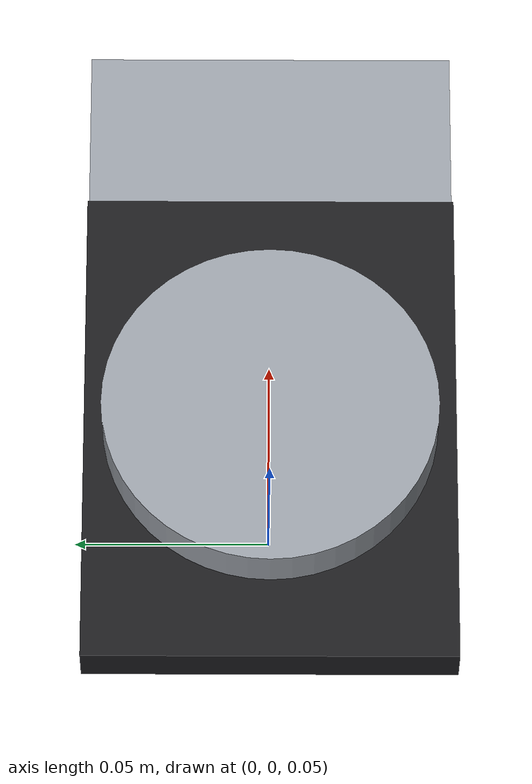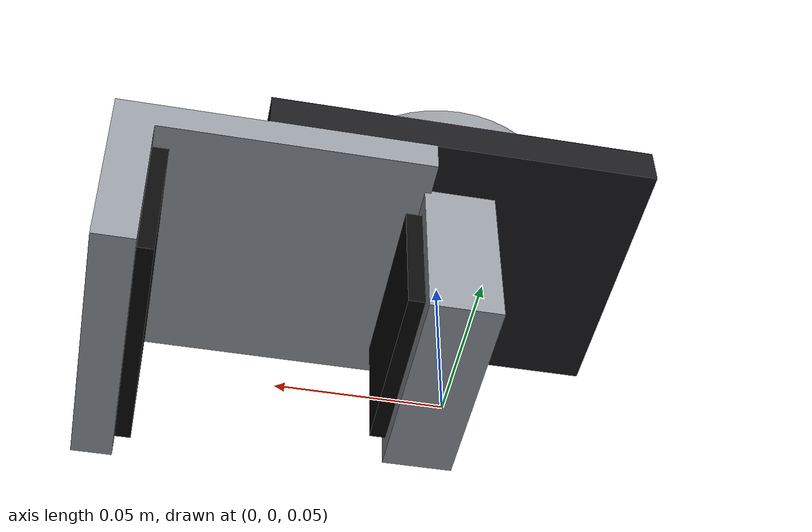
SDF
<?xml version='1.0'?>
<sdf version='1.7'>
  <model name='fixed_jaw_gripper'>

    <!-- ===== Fixed part: flange + body + integral L-jaw + fixed pad ===== -->
    <link name='base_link'>
      <inertial>
        <pose>0.03 0 0.09 0 0 0</pose>
        <mass>0.4</mass>
        <inertia>
          <ixx>0.0005</ixx><iyy>0.0012</iyy><izz>0.0012</izz>
          <ixy>0</ixy><ixz>0</ixz><iyz>0</iyz>
        </inertia>
      </inertial>

      <visual name='base_visual'>
        <geometry><mesh><uri>model://gripper/meshes/base.dae</uri></mesh></geometry>
      </visual>

      <collision name='flange_col'>
        <pose>0 0 0.1336 0 0 0</pose>
        <geometry><cylinder><radius>0.041</radius><length>0.013</length></cylinder></geometry>
      </collision>
      <collision name='body_col'>
        <pose>0 0 0.1210 0 0 0</pose>
        <geometry><box><size>0.1214 0.0912 0.0121</size></box></geometry>
      </collision>
      <collision name='plate_col'>
        <pose>0.0581 0 0.1100 0 0 0</pose>
        <geometry><box><size>0.0980 0.0912 0.010</size></box></geometry>
      </collision>
      <collision name='lip_col'>
        <pose>0.1008 0 0.0800 0 0 0</pose>
        <geometry><box><size>0.0127 0.0912 0.050</size></box></geometry>
      </collision>
      <collision name='pad_fixed_col'>
        <pose>0.0919 0 0.0800 0 0 0</pose>
        <geometry><box><size>0.005 0.080 0.044</size></box></geometry>
        <surface><friction><ode><mu>1.2</mu><mu2>1.2</mu2></ode></friction></surface>
      </collision>
    </link>

    <!-- ===== Moving part: pusher (+ body connector) + moving pad ===== -->
    <link name='finger_link'>
      <inertial>
        <pose>0 0 0.085 0 0 0</pose>
        <mass>0.1</mass>
        <inertia>
          <ixx>0.00008</ixx><iyy>0.000046</iyy><izz>0.000045</izz>
          <ixy>0</ixy><ixz>0</ixz><iyz>0</iyz>
        </inertia>
      </inertial>

      <visual name='finger_visual'>
        <geometry><mesh><uri>model://gripper/meshes/finger.dae</uri></mesh></geometry>
      </visual>

      <collision name='finger_col'>
        <pose>0.0001 0 0.0916 0 0 0</pose>
        <geometry><box><size>0.022 0.070 0.071</size></box></geometry>
        <surface><friction><ode><mu>1.2</mu><mu2>1.2</mu2></ode></friction></surface>
      </collision>
      <collision name='pad_moving_col'>
        <pose>0.0136 0 0.0810 0 0 0</pose>
        <geometry><box><size>0.005 0.060 0.038</size></box></geometry>
        <surface><friction><ode><mu>1.2</mu><mu2>1.2</mu2></ode></friction></surface>
      </collision>
    </link>

    <joint name='finger_joint' type='prismatic'>
      <parent>base_link</parent>
      <child>finger_link</child>
      <axis>
        <xyz>1 0 0</xyz>
        <limit>
          <lower>-0.05</lower>
          <upper>0.07</upper>
          <effort>60</effort>
          <velocity>0.1</velocity>
        </limit>
        <dynamics><damping>5.0</damping><friction>1.0</friction></dynamics>
      </axis>
    </joint>

  </model>
</sdf>
